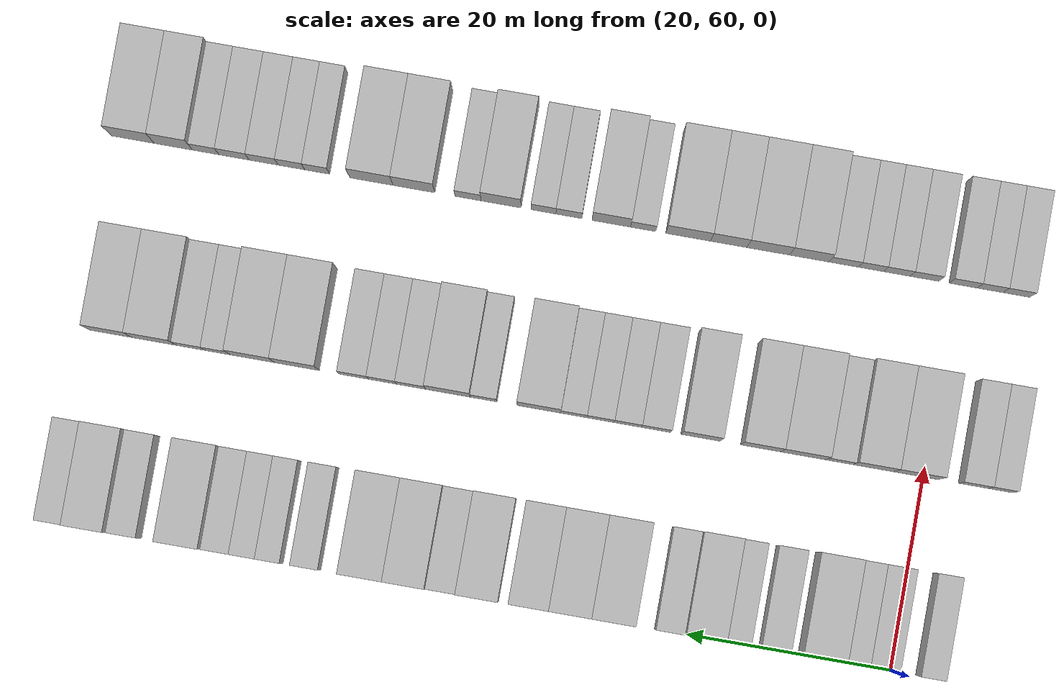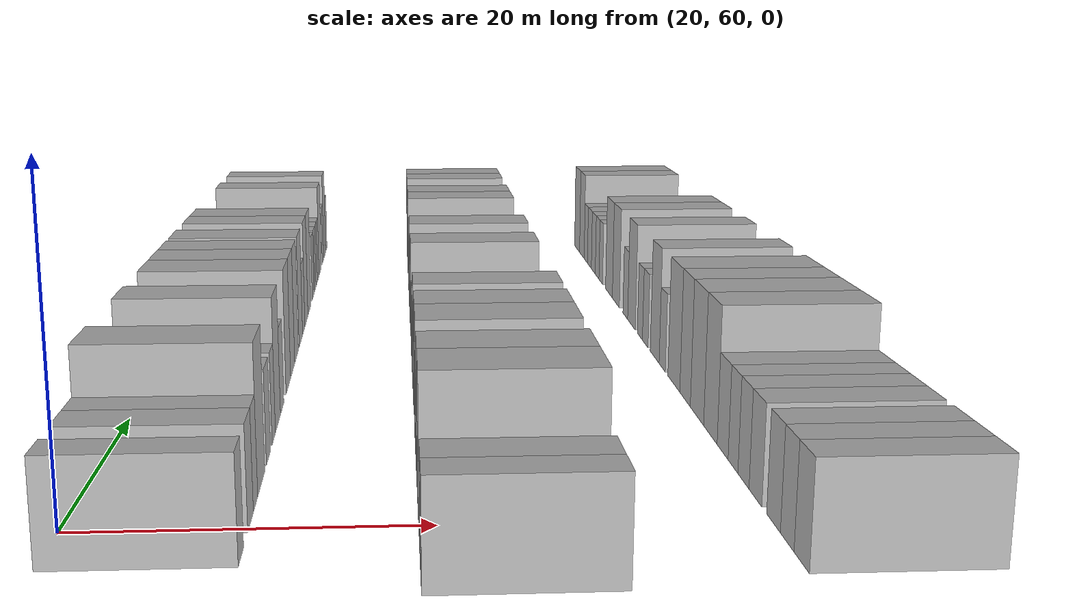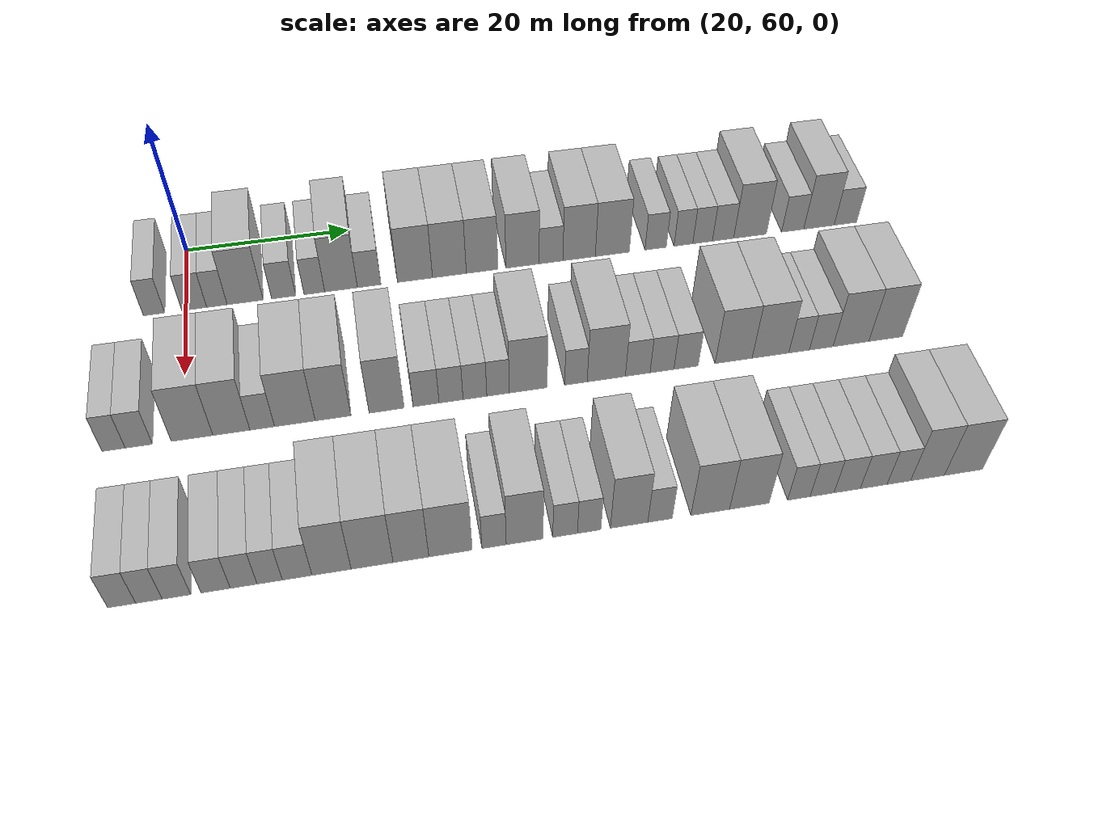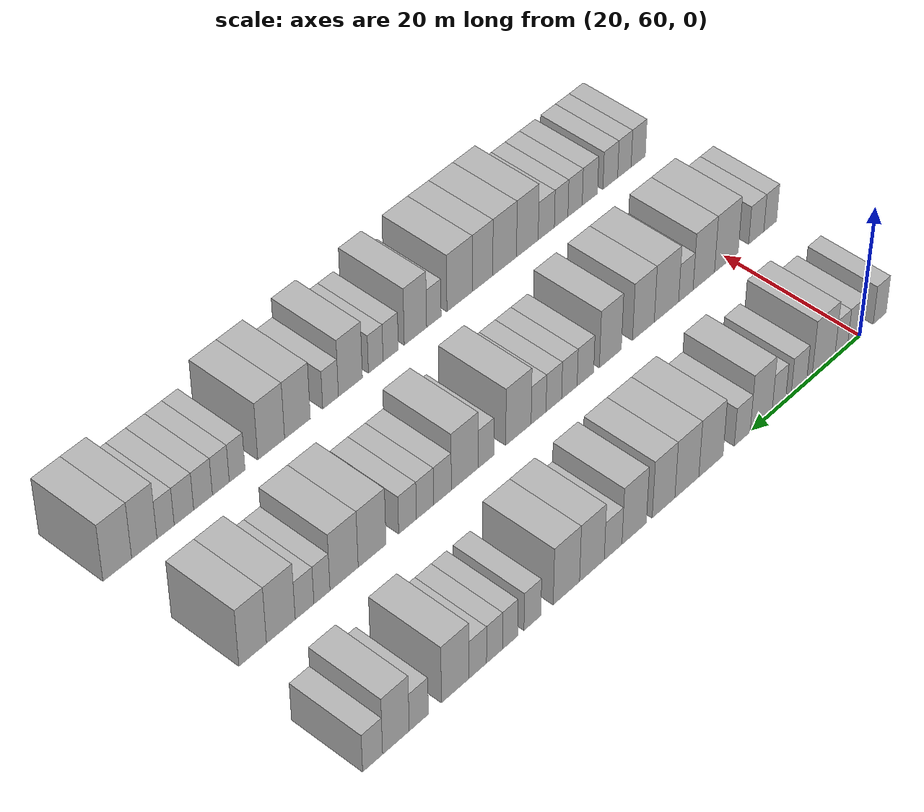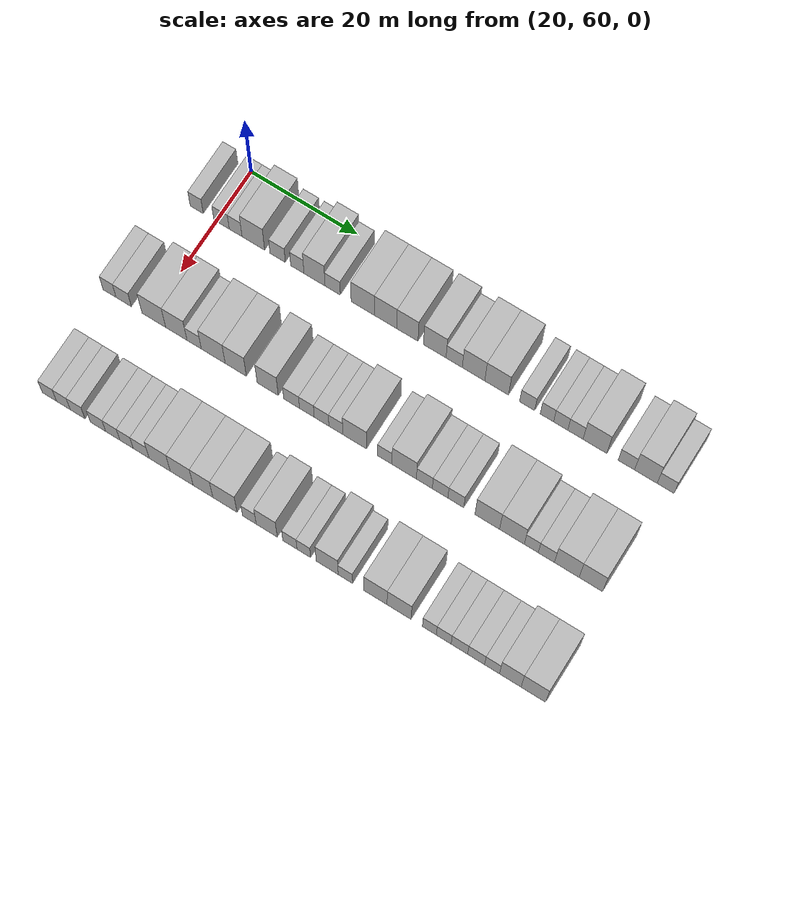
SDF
<sdf version="1.6">
 <world name="default">
  <model name="building_74">
   <static>1</static>
   <pose>25.0000 56.2883 0 0.000000 0.000000 0.000000</pose>
   <link name="link">
    <pose>0 0 3.00 0 0 0</pose>
    <collision name="collision"><geometry><box><size>10.0000 2.4658 6.0000</size></box></geometry></collision>
    <visual name="visual">
     <cast_shadows>0</cast_shadows>
     <geometry><box><size>10.0000 2.4658 6.0000</size></box></geometry>
     <material>
      <script>
       <uri>model://HANNAS_wall/materials/scripts</uri>
       <uri>model://HANNAS_wall/materials/textures</uri>
       <name>vrc/HANNAS_wall</name>
      </script>
     </material>
    </visual>
   </link>
  </model>
  <model name="building_75">
   <static>1</static>
   <pose>25.0000 60.9680 0 0.000000 0.000000 0.000000</pose>
   <link name="link">
    <pose>0 0 3.00 0 0 0</pose>
    <collision name="collision"><geometry><box><size>10.0000 2.8935 6.0000</size></box></geometry></collision>
    <visual name="visual">
     <cast_shadows>0</cast_shadows>
     <geometry><box><size>10.0000 2.8935 6.0000</size></box></geometry>
     <material>
      <script>
       <uri>model://HANNAS_wall/materials/scripts</uri>
       <uri>model://HANNAS_wall/materials/textures</uri>
       <name>vrc/HANNAS_wall</name>
      </script>
     </material>
    </visual>
   </link>
  </model>
  <model name="building_76">
   <static>1</static>
   <pose>25.0000 63.6170 0 0.000000 0.000000 0.000000</pose>
   <link name="link">
    <pose>0 0 3.00 0 0 0</pose>
    <collision name="collision"><geometry><box><size>10.0000 2.4045 6.0000</size></box></geometry></collision>
    <visual name="visual">
     <cast_shadows>0</cast_shadows>
     <geometry><box><size>10.0000 2.4045 6.0000</size></box></geometry>
     <material>
      <script>
       <uri>model://HANNAS_wall/materials/scripts</uri>
       <uri>model://HANNAS_wall/materials/textures</uri>
       <name>vrc/HANNAS_wall</name>
      </script>
     </material>
    </visual>
   </link>
  </model>
  <model name="building_77">
   <static>1</static>
   <pose>25.0000 66.9416 0 0.000000 0.000000 0.000000</pose>
   <link name="link">
    <pose>0 0 4.50 0 0 0</pose>
    <collision name="collision"><geometry><box><size>10.0000 4.2447 9.0000</size></box></geometry></collision>
    <visual name="visual">
     <cast_shadows>0</cast_shadows>
     <geometry><box><size>10.0000 4.2447 9.0000</size></box></geometry>
     <material>
      <script>
       <uri>model://HANNAS_wall/materials/scripts</uri>
       <uri>model://HANNAS_wall/materials/textures</uri>
       <name>vrc/HANNAS_wall</name>
      </script>
     </material>
    </visual>
   </link>
  </model>
  <model name="building_78">
   <static>1</static>
   <pose>25.0000 71.4945 0 0.000000 0.000000 0.000000</pose>
   <link name="link">
    <pose>0 0 3.00 0 0 0</pose>
    <collision name="collision"><geometry><box><size>10.0000 2.8611 6.0000</size></box></geometry></collision>
    <visual name="visual">
     <cast_shadows>0</cast_shadows>
     <geometry><box><size>10.0000 2.8611 6.0000</size></box></geometry>
     <material>
      <script>
       <uri>model://HANNAS_wall/materials/scripts</uri>
       <uri>model://HANNAS_wall/materials/textures</uri>
       <name>vrc/HANNAS_wall</name>
      </script>
     </material>
    </visual>
   </link>
  </model>
  <model name="building_79">
   <static>1</static>
   <pose>25.0000 75.1575 0 0.000000 0.000000 0.000000</pose>
   <link name="link">
    <pose>0 0 3.00 0 0 0</pose>
    <collision name="collision"><geometry><box><size>10.0000 2.4649 6.0000</size></box></geometry></collision>
    <visual name="visual">
     <cast_shadows>0</cast_shadows>
     <geometry><box><size>10.0000 2.4649 6.0000</size></box></geometry>
     <material>
      <script>
       <uri>model://HANNAS_wall/materials/scripts</uri>
       <uri>model://HANNAS_wall/materials/textures</uri>
       <name>vrc/HANNAS_wall</name>
      </script>
     </material>
    </visual>
   </link>
  </model>
  <model name="building_80">
   <static>1</static>
   <pose>25.0000 78.3529 0 0.000000 0.000000 0.000000</pose>
   <link name="link">
    <pose>0 0 4.50 0 0 0</pose>
    <collision name="collision"><geometry><box><size>10.0000 3.9260 9.0000</size></box></geometry></collision>
    <visual name="visual">
     <cast_shadows>0</cast_shadows>
     <geometry><box><size>10.0000 3.9260 9.0000</size></box></geometry>
     <material>
      <script>
       <uri>model://HANNAS_wall/materials/scripts</uri>
       <uri>model://HANNAS_wall/materials/textures</uri>
       <name>vrc/HANNAS_wall</name>
      </script>
     </material>
    </visual>
   </link>
  </model>
  <model name="building_81">
   <static>1</static>
   <pose>25.0000 81.7323 0 0.000000 0.000000 0.000000</pose>
   <link name="link">
    <pose>0 0 3.00 0 0 0</pose>
    <collision name="collision"><geometry><box><size>10.0000 2.8328 6.0000</size></box></geometry></collision>
    <visual name="visual">
     <cast_shadows>0</cast_shadows>
     <geometry><box><size>10.0000 2.8328 6.0000</size></box></geometry>
     <material>
      <script>
       <uri>model://HANNAS_wall/materials/scripts</uri>
       <uri>model://HANNAS_wall/materials/textures</uri>
       <name>vrc/HANNAS_wall</name>
      </script>
     </material>
    </visual>
   </link>
  </model>
  <model name="building_82">
   <static>1</static>
   <pose>25.0000 87.2808 0 0.000000 0.000000 0.000000</pose>
   <link name="link">
    <pose>0 0 4.50 0 0 0</pose>
    <collision name="collision"><geometry><box><size>10.0000 4.2640 9.0000</size></box></geometry></collision>
    <visual name="visual">
     <cast_shadows>0</cast_shadows>
     <geometry><box><size>10.0000 4.2640 9.0000</size></box></geometry>
     <material>
      <script>
       <uri>model://HANNAS_wall/materials/scripts</uri>
       <uri>model://HANNAS_wall/materials/textures</uri>
       <name>vrc/HANNAS_wall</name>
      </script>
     </material>
    </visual>
   </link>
  </model>
  <model name="building_83">
   <static>1</static>
   <pose>25.0000 91.4872 0 0.000000 0.000000 0.000000</pose>
   <link name="link">
    <pose>0 0 4.50 0 0 0</pose>
    <collision name="collision"><geometry><box><size>10.0000 4.1489 9.0000</size></box></geometry></collision>
    <visual name="visual">
     <cast_shadows>0</cast_shadows>
     <geometry><box><size>10.0000 4.1489 9.0000</size></box></geometry>
     <material>
      <script>
       <uri>model://HANNAS_wall/materials/scripts</uri>
       <uri>model://HANNAS_wall/materials/textures</uri>
       <name>vrc/HANNAS_wall</name>
      </script>
     </material>
    </visual>
   </link>
  </model>
  <model name="building_84">
   <static>1</static>
   <pose>25.0000 95.5067 0 0.000000 0.000000 0.000000</pose>
   <link name="link">
    <pose>0 0 4.50 0 0 0</pose>
    <collision name="collision"><geometry><box><size>10.0000 3.8901 9.0000</size></box></geometry></collision>
    <visual name="visual">
     <cast_shadows>0</cast_shadows>
     <geometry><box><size>10.0000 3.8901 9.0000</size></box></geometry>
     <material>
      <script>
       <uri>model://HANNAS_wall/materials/scripts</uri>
       <uri>model://HANNAS_wall/materials/textures</uri>
       <name>vrc/HANNAS_wall</name>
      </script>
     </material>
    </visual>
   </link>
  </model>
  <model name="building_85">
   <static>1</static>
   <pose>25.0000 100.5117 0 0.000000 0.000000 0.000000</pose>
   <link name="link">
    <pose>0 0 4.50 0 0 0</pose>
    <collision name="collision"><geometry><box><size>10.0000 4.1198 9.0000</size></box></geometry></collision>
    <visual name="visual">
     <cast_shadows>0</cast_shadows>
     <geometry><box><size>10.0000 4.1198 9.0000</size></box></geometry>
     <material>
      <script>
       <uri>model://HANNAS_wall/materials/scripts</uri>
       <uri>model://HANNAS_wall/materials/textures</uri>
       <name>vrc/HANNAS_wall</name>
      </script>
     </material>
    </visual>
   </link>
  </model>
  <model name="building_86">
   <static>1</static>
   <pose>25.0000 104.0516 0 0.000000 0.000000 0.000000</pose>
   <link name="link">
    <pose>0 0 3.00 0 0 0</pose>
    <collision name="collision"><geometry><box><size>10.0000 2.9601 6.0000</size></box></geometry></collision>
    <visual name="visual">
     <cast_shadows>0</cast_shadows>
     <geometry><box><size>10.0000 2.9601 6.0000</size></box></geometry>
     <material>
      <script>
       <uri>model://HANNAS_wall/materials/scripts</uri>
       <uri>model://HANNAS_wall/materials/textures</uri>
       <name>vrc/HANNAS_wall</name>
      </script>
     </material>
    </visual>
   </link>
  </model>
  <model name="building_87">
   <static>1</static>
   <pose>25.0000 107.5722 0 0.000000 0.000000 0.000000</pose>
   <link name="link">
    <pose>0 0 4.50 0 0 0</pose>
    <collision name="collision"><geometry><box><size>10.0000 4.0810 9.0000</size></box></geometry></collision>
    <visual name="visual">
     <cast_shadows>0</cast_shadows>
     <geometry><box><size>10.0000 4.0810 9.0000</size></box></geometry>
     <material>
      <script>
       <uri>model://HANNAS_wall/materials/scripts</uri>
       <uri>model://HANNAS_wall/materials/textures</uri>
       <name>vrc/HANNAS_wall</name>
      </script>
     </material>
    </visual>
   </link>
  </model>
  <model name="building_88">
   <static>1</static>
   <pose>25.0000 111.7643 0 0.000000 0.000000 0.000000</pose>
   <link name="link">
    <pose>0 0 4.50 0 0 0</pose>
    <collision name="collision"><geometry><box><size>10.0000 4.3033 9.0000</size></box></geometry></collision>
    <visual name="visual">
     <cast_shadows>0</cast_shadows>
     <geometry><box><size>10.0000 4.3033 9.0000</size></box></geometry>
     <material>
      <script>
       <uri>model://HANNAS_wall/materials/scripts</uri>
       <uri>model://HANNAS_wall/materials/textures</uri>
       <name>vrc/HANNAS_wall</name>
      </script>
     </material>
    </visual>
   </link>
  </model>
  <model name="building_89">
   <static>1</static>
   <pose>25.0000 117.2721 0 0.000000 0.000000 0.000000</pose>
   <link name="link">
    <pose>0 0 3.00 0 0 0</pose>
    <collision name="collision"><geometry><box><size>10.0000 2.7122 6.0000</size></box></geometry></collision>
    <visual name="visual">
     <cast_shadows>0</cast_shadows>
     <geometry><box><size>10.0000 2.7122 6.0000</size></box></geometry>
     <material>
      <script>
       <uri>model://HANNAS_wall/materials/scripts</uri>
       <uri>model://HANNAS_wall/materials/textures</uri>
       <name>vrc/HANNAS_wall</name>
      </script>
     </material>
    </visual>
   </link>
  </model>
  <model name="building_90">
   <static>1</static>
   <pose>25.0000 120.8321 0 0.000000 0.000000 0.000000</pose>
   <link name="link">
    <pose>0 0 3.00 0 0 0</pose>
    <collision name="collision"><geometry><box><size>10.0000 2.4078 6.0000</size></box></geometry></collision>
    <visual name="visual">
     <cast_shadows>0</cast_shadows>
     <geometry><box><size>10.0000 2.4078 6.0000</size></box></geometry>
     <material>
      <script>
       <uri>model://HANNAS_wall/materials/scripts</uri>
       <uri>model://HANNAS_wall/materials/textures</uri>
       <name>vrc/HANNAS_wall</name>
      </script>
     </material>
    </visual>
   </link>
  </model>
  <model name="building_91">
   <static>1</static>
   <pose>25.0000 123.2994 0 0.000000 0.000000 0.000000</pose>
   <link name="link">
    <pose>0 0 3.00 0 0 0</pose>
    <collision name="collision"><geometry><box><size>10.0000 2.5268 6.0000</size></box></geometry></collision>
    <visual name="visual">
     <cast_shadows>0</cast_shadows>
     <geometry><box><size>10.0000 2.5268 6.0000</size></box></geometry>
     <material>
      <script>
       <uri>model://HANNAS_wall/materials/scripts</uri>
       <uri>model://HANNAS_wall/materials/textures</uri>
       <name>vrc/HANNAS_wall</name>
      </script>
     </material>
    </visual>
   </link>
  </model>
  <model name="building_92">
   <static>1</static>
   <pose>25.0000 125.9345 0 0.000000 0.000000 0.000000</pose>
   <link name="link">
    <pose>0 0 3.00 0 0 0</pose>
    <collision name="collision"><geometry><box><size>10.0000 2.7433 6.0000</size></box></geometry></collision>
    <visual name="visual">
     <cast_shadows>0</cast_shadows>
     <geometry><box><size>10.0000 2.7433 6.0000</size></box></geometry>
     <material>
      <script>
       <uri>model://HANNAS_wall/materials/scripts</uri>
       <uri>model://HANNAS_wall/materials/textures</uri>
       <name>vrc/HANNAS_wall</name>
      </script>
     </material>
    </visual>
   </link>
  </model>
  <model name="building_93">
   <static>1</static>
   <pose>25.0000 129.4355 0 0.000000 0.000000 0.000000</pose>
   <link name="link">
    <pose>0 0 4.50 0 0 0</pose>
    <collision name="collision"><geometry><box><size>10.0000 4.2588 9.0000</size></box></geometry></collision>
    <visual name="visual">
     <cast_shadows>0</cast_shadows>
     <geometry><box><size>10.0000 4.2588 9.0000</size></box></geometry>
     <material>
      <script>
       <uri>model://HANNAS_wall/materials/scripts</uri>
       <uri>model://HANNAS_wall/materials/textures</uri>
       <name>vrc/HANNAS_wall</name>
      </script>
     </material>
    </visual>
   </link>
  </model>
  <model name="building_94">
   <static>1</static>
   <pose>25.0000 135.0174 0 0.000000 0.000000 0.000000</pose>
   <link name="link">
    <pose>0 0 3.00 0 0 0</pose>
    <collision name="collision"><geometry><box><size>10.0000 2.9049 6.0000</size></box></geometry></collision>
    <visual name="visual">
     <cast_shadows>0</cast_shadows>
     <geometry><box><size>10.0000 2.9049 6.0000</size></box></geometry>
     <material>
      <script>
       <uri>model://HANNAS_wall/materials/scripts</uri>
       <uri>model://HANNAS_wall/materials/textures</uri>
       <name>vrc/HANNAS_wall</name>
      </script>
     </material>
    </visual>
   </link>
  </model>
  <model name="building_95">
   <static>1</static>
   <pose>25.0000 138.4718 0 0.000000 0.000000 0.000000</pose>
   <link name="link">
    <pose>0 0 4.50 0 0 0</pose>
    <collision name="collision"><geometry><box><size>10.0000 4.0040 9.0000</size></box></geometry></collision>
    <visual name="visual">
     <cast_shadows>0</cast_shadows>
     <geometry><box><size>10.0000 4.0040 9.0000</size></box></geometry>
     <material>
      <script>
       <uri>model://HANNAS_wall/materials/scripts</uri>
       <uri>model://HANNAS_wall/materials/textures</uri>
       <name>vrc/HANNAS_wall</name>
      </script>
     </material>
    </visual>
   </link>
  </model>
  <model name="building_96">
   <static>1</static>
   <pose>25.0000 141.9629 0 0.000000 0.000000 0.000000</pose>
   <link name="link">
    <pose>0 0 3.00 0 0 0</pose>
    <collision name="collision"><geometry><box><size>10.0000 2.9783 6.0000</size></box></geometry></collision>
    <visual name="visual">
     <cast_shadows>0</cast_shadows>
     <geometry><box><size>10.0000 2.9783 6.0000</size></box></geometry>
     <material>
      <script>
       <uri>model://HANNAS_wall/materials/scripts</uri>
       <uri>model://HANNAS_wall/materials/textures</uri>
       <name>vrc/HANNAS_wall</name>
      </script>
     </material>
    </visual>
   </link>
  </model>
  <model name="building_193">
   <static>1</static>
   <pose>44.0000 52.4779 0 0.000000 0.000000 0.000000</pose>
   <link name="link">
    <pose>0 0 3.00 0 0 0</pose>
    <collision name="collision"><geometry><box><size>10.0000 2.4436 6.0000</size></box></geometry></collision>
    <visual name="visual">
     <cast_shadows>0</cast_shadows>
     <geometry><box><size>10.0000 2.4436 6.0000</size></box></geometry>
     <material>
      <script>
       <uri>model://HANNAS_wall/materials/scripts</uri>
       <uri>model://HANNAS_wall/materials/textures</uri>
       <name>vrc/HANNAS_wall</name>
      </script>
     </material>
    </visual>
   </link>
  </model>
  <model name="building_194">
   <static>1</static>
   <pose>44.0000 55.1393 0 0.000000 0.000000 0.000000</pose>
   <link name="link">
    <pose>0 0 3.00 0 0 0</pose>
    <collision name="collision"><geometry><box><size>10.0000 2.8792 6.0000</size></box></geometry></collision>
    <visual name="visual">
     <cast_shadows>0</cast_shadows>
     <geometry><box><size>10.0000 2.8792 6.0000</size></box></geometry>
     <material>
      <script>
       <uri>model://HANNAS_wall/materials/scripts</uri>
       <uri>model://HANNAS_wall/materials/textures</uri>
       <name>vrc/HANNAS_wall</name>
      </script>
     </material>
    </visual>
   </link>
  </model>
  <model name="building_195">
   <static>1</static>
   <pose>44.0000 60.7960 0 0.000000 0.000000 0.000000</pose>
   <link name="link">
    <pose>0 0 4.50 0 0 0</pose>
    <collision name="collision"><geometry><box><size>10.0000 4.4342 9.0000</size></box></geometry></collision>
    <visual name="visual">
     <cast_shadows>0</cast_shadows>
     <geometry><box><size>10.0000 4.4342 9.0000</size></box></geometry>
     <material>
      <script>
       <uri>model://HANNAS_wall/materials/scripts</uri>
       <uri>model://HANNAS_wall/materials/textures</uri>
       <name>vrc/HANNAS_wall</name>
      </script>
     </material>
    </visual>
   </link>
  </model>
  <model name="building_196">
   <static>1</static>
   <pose>44.0000 65.0018 0 0.000000 0.000000 0.000000</pose>
   <link name="link">
    <pose>0 0 4.50 0 0 0</pose>
    <collision name="collision"><geometry><box><size>10.0000 3.9774 9.0000</size></box></geometry></collision>
    <visual name="visual">
     <cast_shadows>0</cast_shadows>
     <geometry><box><size>10.0000 3.9774 9.0000</size></box></geometry>
     <material>
      <script>
       <uri>model://HANNAS_wall/materials/scripts</uri>
       <uri>model://HANNAS_wall/materials/textures</uri>
       <name>vrc/HANNAS_wall</name>
      </script>
     </material>
    </visual>
   </link>
  </model>
  <model name="building_197">
   <static>1</static>
   <pose>44.0000 68.3236 0 0.000000 0.000000 0.000000</pose>
   <link name="link">
    <pose>0 0 3.00 0 0 0</pose>
    <collision name="collision"><geometry><box><size>10.0000 2.6660 6.0000</size></box></geometry></collision>
    <visual name="visual">
     <cast_shadows>0</cast_shadows>
     <geometry><box><size>10.0000 2.6660 6.0000</size></box></geometry>
     <material>
      <script>
       <uri>model://HANNAS_wall/materials/scripts</uri>
       <uri>model://HANNAS_wall/materials/textures</uri>
       <name>vrc/HANNAS_wall</name>
      </script>
     </material>
    </visual>
   </link>
  </model>
  <model name="building_198">
   <static>1</static>
   <pose>44.0000 71.8673 0 0.000000 0.000000 0.000000</pose>
   <link name="link">
    <pose>0 0 4.50 0 0 0</pose>
    <collision name="collision"><geometry><box><size>10.0000 4.4215 9.0000</size></box></geometry></collision>
    <visual name="visual">
     <cast_shadows>0</cast_shadows>
     <geometry><box><size>10.0000 4.4215 9.0000</size></box></geometry>
     <material>
      <script>
       <uri>model://HANNAS_wall/materials/scripts</uri>
       <uri>model://HANNAS_wall/materials/textures</uri>
       <name>vrc/HANNAS_wall</name>
      </script>
     </material>
    </visual>
   </link>
  </model>
  <model name="building_199">
   <static>1</static>
   <pose>44.0000 76.0346 0 0.000000 0.000000 0.000000</pose>
   <link name="link">
    <pose>0 0 4.50 0 0 0</pose>
    <collision name="collision"><geometry><box><size>10.0000 3.9131 9.0000</size></box></geometry></collision>
    <visual name="visual">
     <cast_shadows>0</cast_shadows>
     <geometry><box><size>10.0000 3.9131 9.0000</size></box></geometry>
     <material>
      <script>
       <uri>model://HANNAS_wall/materials/scripts</uri>
       <uri>model://HANNAS_wall/materials/textures</uri>
       <name>vrc/HANNAS_wall</name>
      </script>
     </material>
    </visual>
   </link>
  </model>
  <model name="building_200">
   <static>1</static>
   <pose>44.0000 81.9306 0 0.000000 0.000000 0.000000</pose>
   <link name="link">
    <pose>0 0 4.50 0 0 0</pose>
    <collision name="collision"><geometry><box><size>10.0000 3.8789 9.0000</size></box></geometry></collision>
    <visual name="visual">
     <cast_shadows>0</cast_shadows>
     <geometry><box><size>10.0000 3.8789 9.0000</size></box></geometry>
     <material>
      <script>
       <uri>model://HANNAS_wall/materials/scripts</uri>
       <uri>model://HANNAS_wall/materials/textures</uri>
       <name>vrc/HANNAS_wall</name>
      </script>
     </material>
    </visual>
   </link>
  </model>
  <model name="building_201">
   <static>1</static>
   <pose>44.0000 86.3154 0 0.000000 0.000000 0.000000</pose>
   <link name="link">
    <pose>0 0 3.00 0 0 0</pose>
    <collision name="collision"><geometry><box><size>10.0000 2.8909 6.0000</size></box></geometry></collision>
    <visual name="visual">
     <cast_shadows>0</cast_shadows>
     <geometry><box><size>10.0000 2.8909 6.0000</size></box></geometry>
     <material>
      <script>
       <uri>model://HANNAS_wall/materials/scripts</uri>
       <uri>model://HANNAS_wall/materials/textures</uri>
       <name>vrc/HANNAS_wall</name>
      </script>
     </material>
    </visual>
   </link>
  </model>
  <model name="building_202">
   <static>1</static>
   <pose>44.0000 89.1066 0 0.000000 0.000000 0.000000</pose>
   <link name="link">
    <pose>0 0 3.00 0 0 0</pose>
    <collision name="collision"><geometry><box><size>10.0000 2.6915 6.0000</size></box></geometry></collision>
    <visual name="visual">
     <cast_shadows>0</cast_shadows>
     <geometry><box><size>10.0000 2.6915 6.0000</size></box></geometry>
     <material>
      <script>
       <uri>model://HANNAS_wall/materials/scripts</uri>
       <uri>model://HANNAS_wall/materials/textures</uri>
       <name>vrc/HANNAS_wall</name>
      </script>
     </material>
    </visual>
   </link>
  </model>
  <model name="building_203">
   <static>1</static>
   <pose>44.0000 91.7895 0 0.000000 0.000000 0.000000</pose>
   <link name="link">
    <pose>0 0 3.00 0 0 0</pose>
    <collision name="collision"><geometry><box><size>10.0000 2.6743 6.0000</size></box></geometry></collision>
    <visual name="visual">
     <cast_shadows>0</cast_shadows>
     <geometry><box><size>10.0000 2.6743 6.0000</size></box></geometry>
     <material>
      <script>
       <uri>model://HANNAS_wall/materials/scripts</uri>
       <uri>model://HANNAS_wall/materials/textures</uri>
       <name>vrc/HANNAS_wall</name>
      </script>
     </material>
    </visual>
   </link>
  </model>
  <model name="building_204">
   <static>1</static>
   <pose>44.0000 94.4007 0 0.000000 0.000000 0.000000</pose>
   <link name="link">
    <pose>0 0 3.00 0 0 0</pose>
    <collision name="collision"><geometry><box><size>10.0000 2.5481 6.0000</size></box></geometry></collision>
    <visual name="visual">
     <cast_shadows>0</cast_shadows>
     <geometry><box><size>10.0000 2.5481 6.0000</size></box></geometry>
     <material>
      <script>
       <uri>model://HANNAS_wall/materials/scripts</uri>
       <uri>model://HANNAS_wall/materials/textures</uri>
       <name>vrc/HANNAS_wall</name>
      </script>
     </material>
    </visual>
   </link>
  </model>
  <model name="building_205">
   <static>1</static>
   <pose>44.0000 97.8202 0 0.000000 0.000000 0.000000</pose>
   <link name="link">
    <pose>0 0 4.50 0 0 0</pose>
    <collision name="collision"><geometry><box><size>10.0000 4.2910 9.0000</size></box></geometry></collision>
    <visual name="visual">
     <cast_shadows>0</cast_shadows>
     <geometry><box><size>10.0000 4.2910 9.0000</size></box></geometry>
     <material>
      <script>
       <uri>model://HANNAS_wall/materials/scripts</uri>
       <uri>model://HANNAS_wall/materials/textures</uri>
       <name>vrc/HANNAS_wall</name>
      </script>
     </material>
    </visual>
   </link>
  </model>
  <model name="building_206">
   <static>1</static>
   <pose>44.0000 103.2619 0 0.000000 0.000000 0.000000</pose>
   <link name="link">
    <pose>0 0 3.00 0 0 0</pose>
    <collision name="collision"><geometry><box><size>10.0000 2.5923 6.0000</size></box></geometry></collision>
    <visual name="visual">
     <cast_shadows>0</cast_shadows>
     <geometry><box><size>10.0000 2.5923 6.0000</size></box></geometry>
     <material>
      <script>
       <uri>model://HANNAS_wall/materials/scripts</uri>
       <uri>model://HANNAS_wall/materials/textures</uri>
       <name>vrc/HANNAS_wall</name>
      </script>
     </material>
    </visual>
   </link>
  </model>
  <model name="building_207">
   <static>1</static>
   <pose>44.0000 106.7647 0 0.000000 0.000000 0.000000</pose>
   <link name="link">
    <pose>0 0 4.50 0 0 0</pose>
    <collision name="collision"><geometry><box><size>10.0000 4.4134 9.0000</size></box></geometry></collision>
    <visual name="visual">
     <cast_shadows>0</cast_shadows>
     <geometry><box><size>10.0000 4.4134 9.0000</size></box></geometry>
     <material>
      <script>
       <uri>model://HANNAS_wall/materials/scripts</uri>
       <uri>model://HANNAS_wall/materials/textures</uri>
       <name>vrc/HANNAS_wall</name>
      </script>
     </material>
    </visual>
   </link>
  </model>
  <model name="building_208">
   <static>1</static>
   <pose>44.0000 110.4090 0 0.000000 0.000000 0.000000</pose>
   <link name="link">
    <pose>0 0 3.00 0 0 0</pose>
    <collision name="collision"><geometry><box><size>10.0000 2.8753 6.0000</size></box></geometry></collision>
    <visual name="visual">
     <cast_shadows>0</cast_shadows>
     <geometry><box><size>10.0000 2.8753 6.0000</size></box></geometry>
     <material>
      <script>
       <uri>model://HANNAS_wall/materials/scripts</uri>
       <uri>model://HANNAS_wall/materials/textures</uri>
       <name>vrc/HANNAS_wall</name>
      </script>
     </material>
    </visual>
   </link>
  </model>
  <model name="building_209">
   <static>1</static>
   <pose>44.0000 113.2383 0 0.000000 0.000000 0.000000</pose>
   <link name="link">
    <pose>0 0 3.00 0 0 0</pose>
    <collision name="collision"><geometry><box><size>10.0000 2.7834 6.0000</size></box></geometry></collision>
    <visual name="visual">
     <cast_shadows>0</cast_shadows>
     <geometry><box><size>10.0000 2.7834 6.0000</size></box></geometry>
     <material>
      <script>
       <uri>model://HANNAS_wall/materials/scripts</uri>
       <uri>model://HANNAS_wall/materials/textures</uri>
       <name>vrc/HANNAS_wall</name>
      </script>
     </material>
    </visual>
   </link>
  </model>
  <model name="building_210">
   <static>1</static>
   <pose>44.0000 116.0542 0 0.000000 0.000000 0.000000</pose>
   <link name="link">
    <pose>0 0 3.00 0 0 0</pose>
    <collision name="collision"><geometry><box><size>10.0000 2.8483 6.0000</size></box></geometry></collision>
    <visual name="visual">
     <cast_shadows>0</cast_shadows>
     <geometry><box><size>10.0000 2.8483 6.0000</size></box></geometry>
     <material>
      <script>
       <uri>model://HANNAS_wall/materials/scripts</uri>
       <uri>model://HANNAS_wall/materials/textures</uri>
       <name>vrc/HANNAS_wall</name>
      </script>
     </material>
    </visual>
   </link>
  </model>
  <model name="building_211">
   <static>1</static>
   <pose>44.0000 121.6742 0 0.000000 0.000000 0.000000</pose>
   <link name="link">
    <pose>0 0 4.50 0 0 0</pose>
    <collision name="collision"><geometry><box><size>10.0000 4.3918 9.0000</size></box></geometry></collision>
    <visual name="visual">
     <cast_shadows>0</cast_shadows>
     <geometry><box><size>10.0000 4.3918 9.0000</size></box></geometry>
     <material>
      <script>
       <uri>model://HANNAS_wall/materials/scripts</uri>
       <uri>model://HANNAS_wall/materials/textures</uri>
       <name>vrc/HANNAS_wall</name>
      </script>
     </material>
    </visual>
   </link>
  </model>
  <model name="building_212">
   <static>1</static>
   <pose>44.0000 126.0606 0 0.000000 0.000000 0.000000</pose>
   <link name="link">
    <pose>0 0 4.50 0 0 0</pose>
    <collision name="collision"><geometry><box><size>10.0000 4.3810 9.0000</size></box></geometry></collision>
    <visual name="visual">
     <cast_shadows>0</cast_shadows>
     <geometry><box><size>10.0000 4.3810 9.0000</size></box></geometry>
     <material>
      <script>
       <uri>model://HANNAS_wall/materials/scripts</uri>
       <uri>model://HANNAS_wall/materials/textures</uri>
       <name>vrc/HANNAS_wall</name>
      </script>
     </material>
    </visual>
   </link>
  </model>
  <model name="building_213">
   <static>1</static>
   <pose>44.0000 129.4884 0 0.000000 0.000000 0.000000</pose>
   <link name="link">
    <pose>0 0 3.00 0 0 0</pose>
    <collision name="collision"><geometry><box><size>10.0000 2.4746 6.0000</size></box></geometry></collision>
    <visual name="visual">
     <cast_shadows>0</cast_shadows>
     <geometry><box><size>10.0000 2.4746 6.0000</size></box></geometry>
     <material>
      <script>
       <uri>model://HANNAS_wall/materials/scripts</uri>
       <uri>model://HANNAS_wall/materials/textures</uri>
       <name>vrc/HANNAS_wall</name>
      </script>
     </material>
    </visual>
   </link>
  </model>
  <model name="building_214">
   <static>1</static>
   <pose>44.0000 132.1512 0 0.000000 0.000000 0.000000</pose>
   <link name="link">
    <pose>0 0 3.00 0 0 0</pose>
    <collision name="collision"><geometry><box><size>10.0000 2.8509 6.0000</size></box></geometry></collision>
    <visual name="visual">
     <cast_shadows>0</cast_shadows>
     <geometry><box><size>10.0000 2.8509 6.0000</size></box></geometry>
     <material>
      <script>
       <uri>model://HANNAS_wall/materials/scripts</uri>
       <uri>model://HANNAS_wall/materials/textures</uri>
       <name>vrc/HANNAS_wall</name>
      </script>
     </material>
    </visual>
   </link>
  </model>
  <model name="building_215">
   <static>1</static>
   <pose>44.0000 135.7488 0 0.000000 0.000000 0.000000</pose>
   <link name="link">
    <pose>0 0 4.50 0 0 0</pose>
    <collision name="collision"><geometry><box><size>10.0000 4.3442 9.0000</size></box></geometry></collision>
    <visual name="visual">
     <cast_shadows>0</cast_shadows>
     <geometry><box><size>10.0000 4.3442 9.0000</size></box></geometry>
     <material>
      <script>
       <uri>model://HANNAS_wall/materials/scripts</uri>
       <uri>model://HANNAS_wall/materials/textures</uri>
       <name>vrc/HANNAS_wall</name>
      </script>
     </material>
    </visual>
   </link>
  </model>
  <model name="building_216">
   <static>1</static>
   <pose>44.0000 139.9794 0 0.000000 0.000000 0.000000</pose>
   <link name="link">
    <pose>0 0 4.50 0 0 0</pose>
    <collision name="collision"><geometry><box><size>10.0000 4.1170 9.0000</size></box></geometry></collision>
    <visual name="visual">
     <cast_shadows>0</cast_shadows>
     <geometry><box><size>10.0000 4.1170 9.0000</size></box></geometry>
     <material>
      <script>
       <uri>model://HANNAS_wall/materials/scripts</uri>
       <uri>model://HANNAS_wall/materials/textures</uri>
       <name>vrc/HANNAS_wall</name>
      </script>
     </material>
    </visual>
   </link>
  </model>
  <model name="building_313">
   <static>1</static>
   <pose>63.0000 54.1122 0 0.000000 0.000000 0.000000</pose>
   <link name="link">
    <pose>0 0 3.00 0 0 0</pose>
    <collision name="collision"><geometry><box><size>10.0000 2.6719 6.0000</size></box></geometry></collision>
    <visual name="visual">
     <cast_shadows>0</cast_shadows>
     <geometry><box><size>10.0000 2.6719 6.0000</size></box></geometry>
     <material>
      <script>
       <uri>model://HANNAS_wall/materials/scripts</uri>
       <uri>model://HANNAS_wall/materials/textures</uri>
       <name>vrc/HANNAS_wall</name>
      </script>
     </material>
    </visual>
   </link>
  </model>
  <model name="building_314">
   <static>1</static>
   <pose>63.0000 56.7197 0 0.000000 0.000000 0.000000</pose>
   <link name="link">
    <pose>0 0 3.00 0 0 0</pose>
    <collision name="collision"><geometry><box><size>10.0000 2.5432 6.0000</size></box></geometry></collision>
    <visual name="visual">
     <cast_shadows>0</cast_shadows>
     <geometry><box><size>10.0000 2.5432 6.0000</size></box></geometry>
     <material>
      <script>
       <uri>model://HANNAS_wall/materials/scripts</uri>
       <uri>model://HANNAS_wall/materials/textures</uri>
       <name>vrc/HANNAS_wall</name>
      </script>
     </material>
    </visual>
   </link>
  </model>
  <model name="building_315">
   <static>1</static>
   <pose>63.0000 59.3636 0 0.000000 0.000000 0.000000</pose>
   <link name="link">
    <pose>0 0 3.00 0 0 0</pose>
    <collision name="collision"><geometry><box><size>10.0000 2.7447 6.0000</size></box></geometry></collision>
    <visual name="visual">
     <cast_shadows>0</cast_shadows>
     <geometry><box><size>10.0000 2.7447 6.0000</size></box></geometry>
     <material>
      <script>
       <uri>model://HANNAS_wall/materials/scripts</uri>
       <uri>model://HANNAS_wall/materials/textures</uri>
       <name>vrc/HANNAS_wall</name>
      </script>
     </material>
    </visual>
   </link>
  </model>
  <model name="building_316">
   <static>1</static>
   <pose>63.0000 63.1548 0 0.000000 0.000000 0.000000</pose>
   <link name="link">
    <pose>0 0 3.00 0 0 0</pose>
    <collision name="collision"><geometry><box><size>10.0000 2.8376 6.0000</size></box></geometry></collision>
    <visual name="visual">
     <cast_shadows>0</cast_shadows>
     <geometry><box><size>10.0000 2.8376 6.0000</size></box></geometry>
     <material>
      <script>
       <uri>model://HANNAS_wall/materials/scripts</uri>
       <uri>model://HANNAS_wall/materials/textures</uri>
       <name>vrc/HANNAS_wall</name>
      </script>
     </material>
    </visual>
   </link>
  </model>
  <model name="building_317">
   <static>1</static>
   <pose>63.0000 65.8836 0 0.000000 0.000000 0.000000</pose>
   <link name="link">
    <pose>0 0 3.00 0 0 0</pose>
    <collision name="collision"><geometry><box><size>10.0000 2.6201 6.0000</size></box></geometry></collision>
    <visual name="visual">
     <cast_shadows>0</cast_shadows>
     <geometry><box><size>10.0000 2.6201 6.0000</size></box></geometry>
     <material>
      <script>
       <uri>model://HANNAS_wall/materials/scripts</uri>
       <uri>model://HANNAS_wall/materials/textures</uri>
       <name>vrc/HANNAS_wall</name>
      </script>
     </material>
    </visual>
   </link>
  </model>
  <model name="building_318">
   <static>1</static>
   <pose>63.0000 68.4302 0 0.000000 0.000000 0.000000</pose>
   <link name="link">
    <pose>0 0 3.00 0 0 0</pose>
    <collision name="collision"><geometry><box><size>10.0000 2.4730 6.0000</size></box></geometry></collision>
    <visual name="visual">
     <cast_shadows>0</cast_shadows>
     <geometry><box><size>10.0000 2.4730 6.0000</size></box></geometry>
     <material>
      <script>
       <uri>model://HANNAS_wall/materials/scripts</uri>
       <uri>model://HANNAS_wall/materials/textures</uri>
       <name>vrc/HANNAS_wall</name>
      </script>
     </material>
    </visual>
   </link>
  </model>
  <model name="building_319">
   <static>1</static>
   <pose>63.0000 71.1296 0 0.000000 0.000000 0.000000</pose>
   <link name="link">
    <pose>0 0 3.00 0 0 0</pose>
    <collision name="collision"><geometry><box><size>10.0000 2.9259 6.0000</size></box></geometry></collision>
    <visual name="visual">
     <cast_shadows>0</cast_shadows>
     <geometry><box><size>10.0000 2.9259 6.0000</size></box></geometry>
     <material>
      <script>
       <uri>model://HANNAS_wall/materials/scripts</uri>
       <uri>model://HANNAS_wall/materials/textures</uri>
       <name>vrc/HANNAS_wall</name>
      </script>
     </material>
    </visual>
   </link>
  </model>
  <model name="building_320">
   <static>1</static>
   <pose>63.0000 74.5350 0 0.000000 0.000000 0.000000</pose>
   <link name="link">
    <pose>0 0 4.50 0 0 0</pose>
    <collision name="collision"><geometry><box><size>10.0000 3.8848 9.0000</size></box></geometry></collision>
    <visual name="visual">
     <cast_shadows>0</cast_shadows>
     <geometry><box><size>10.0000 3.8848 9.0000</size></box></geometry>
     <material>
      <script>
       <uri>model://HANNAS_wall/materials/scripts</uri>
       <uri>model://HANNAS_wall/materials/textures</uri>
       <name>vrc/HANNAS_wall</name>
      </script>
     </material>
    </visual>
   </link>
  </model>
  <model name="building_321">
   <static>1</static>
   <pose>63.0000 78.5751 0 0.000000 0.000000 0.000000</pose>
   <link name="link">
    <pose>0 0 4.50 0 0 0</pose>
    <collision name="collision"><geometry><box><size>10.0000 4.1954 9.0000</size></box></geometry></collision>
    <visual name="visual">
     <cast_shadows>0</cast_shadows>
     <geometry><box><size>10.0000 4.1954 9.0000</size></box></geometry>
     <material>
      <script>
       <uri>model://HANNAS_wall/materials/scripts</uri>
       <uri>model://HANNAS_wall/materials/textures</uri>
       <name>vrc/HANNAS_wall</name>
      </script>
     </material>
    </visual>
   </link>
  </model>
  <model name="building_322">
   <static>1</static>
   <pose>63.0000 82.4731 0 0.000000 0.000000 0.000000</pose>
   <link name="link">
    <pose>0 0 4.50 0 0 0</pose>
    <collision name="collision"><geometry><box><size>10.0000 3.6006 9.0000</size></box></geometry></collision>
    <visual name="visual">
     <cast_shadows>0</cast_shadows>
     <geometry><box><size>10.0000 3.6006 9.0000</size></box></geometry>
     <material>
      <script>
       <uri>model://HANNAS_wall/materials/scripts</uri>
       <uri>model://HANNAS_wall/materials/textures</uri>
       <name>vrc/HANNAS_wall</name>
      </script>
     </material>
    </visual>
   </link>
  </model>
  <model name="building_323">
   <static>1</static>
   <pose>63.0000 86.4742 0 0.000000 0.000000 0.000000</pose>
   <link name="link">
    <pose>0 0 4.50 0 0 0</pose>
    <collision name="collision"><geometry><box><size>10.0000 4.4016 9.0000</size></box></geometry></collision>
    <visual name="visual">
     <cast_shadows>0</cast_shadows>
     <geometry><box><size>10.0000 4.4016 9.0000</size></box></geometry>
     <material>
      <script>
       <uri>model://HANNAS_wall/materials/scripts</uri>
       <uri>model://HANNAS_wall/materials/textures</uri>
       <name>vrc/HANNAS_wall</name>
      </script>
     </material>
    </visual>
   </link>
  </model>
  <model name="building_324">
   <static>1</static>
   <pose>63.0000 90.9151 0 0.000000 0.000000 0.000000</pose>
   <link name="link">
    <pose>0 0 3.00 0 0 0</pose>
    <collision name="collision"><geometry><box><size>10.0000 2.4802 6.0000</size></box></geometry></collision>
    <visual name="visual">
     <cast_shadows>0</cast_shadows>
     <geometry><box><size>10.0000 2.4802 6.0000</size></box></geometry>
     <material>
      <script>
       <uri>model://HANNAS_wall/materials/scripts</uri>
       <uri>model://HANNAS_wall/materials/textures</uri>
       <name>vrc/HANNAS_wall</name>
      </script>
     </material>
    </visual>
   </link>
  </model>
  <model name="building_325">
   <static>1</static>
   <pose>63.0000 94.0518 0 0.000000 0.000000 0.000000</pose>
   <link name="link">
    <pose>0 0 4.50 0 0 0</pose>
    <collision name="collision"><geometry><box><size>10.0000 3.7932 9.0000</size></box></geometry></collision>
    <visual name="visual">
     <cast_shadows>0</cast_shadows>
     <geometry><box><size>10.0000 3.7932 9.0000</size></box></geometry>
     <material>
      <script>
       <uri>model://HANNAS_wall/materials/scripts</uri>
       <uri>model://HANNAS_wall/materials/textures</uri>
       <name>vrc/HANNAS_wall</name>
      </script>
     </material>
    </visual>
   </link>
  </model>
  <model name="building_326">
   <static>1</static>
   <pose>63.0000 98.2285 0 0.000000 0.000000 0.000000</pose>
   <link name="link">
    <pose>0 0 3.00 0 0 0</pose>
    <collision name="collision"><geometry><box><size>10.0000 2.5602 6.0000</size></box></geometry></collision>
    <visual name="visual">
     <cast_shadows>0</cast_shadows>
     <geometry><box><size>10.0000 2.5602 6.0000</size></box></geometry>
     <material>
      <script>
       <uri>model://HANNAS_wall/materials/scripts</uri>
       <uri>model://HANNAS_wall/materials/textures</uri>
       <name>vrc/HANNAS_wall</name>
      </script>
     </material>
    </visual>
   </link>
  </model>
  <model name="building_327">
   <static>1</static>
   <pose>63.0000 100.7288 0 0.000000 0.000000 0.000000</pose>
   <link name="link">
    <pose>0 0 3.00 0 0 0</pose>
    <collision name="collision"><geometry><box><size>10.0000 2.4404 6.0000</size></box></geometry></collision>
    <visual name="visual">
     <cast_shadows>0</cast_shadows>
     <geometry><box><size>10.0000 2.4404 6.0000</size></box></geometry>
     <material>
      <script>
       <uri>model://HANNAS_wall/materials/scripts</uri>
       <uri>model://HANNAS_wall/materials/textures</uri>
       <name>vrc/HANNAS_wall</name>
      </script>
     </material>
    </visual>
   </link>
  </model>
  <model name="building_328">
   <static>1</static>
   <pose>63.0000 104.9218 0 0.000000 0.000000 0.000000</pose>
   <link name="link">
    <pose>0 0 4.50 0 0 0</pose>
    <collision name="collision"><geometry><box><size>10.0000 3.9456 9.0000</size></box></geometry></collision>
    <visual name="visual">
     <cast_shadows>0</cast_shadows>
     <geometry><box><size>10.0000 3.9456 9.0000</size></box></geometry>
     <material>
      <script>
       <uri>model://HANNAS_wall/materials/scripts</uri>
       <uri>model://HANNAS_wall/materials/textures</uri>
       <name>vrc/HANNAS_wall</name>
      </script>
     </material>
    </visual>
   </link>
  </model>
  <model name="building_329">
   <static>1</static>
   <pose>63.0000 108.1786 0 0.000000 0.000000 0.000000</pose>
   <link name="link">
    <pose>0 0 3.00 0 0 0</pose>
    <collision name="collision"><geometry><box><size>10.0000 2.5680 6.0000</size></box></geometry></collision>
    <visual name="visual">
     <cast_shadows>0</cast_shadows>
     <geometry><box><size>10.0000 2.5680 6.0000</size></box></geometry>
     <material>
      <script>
       <uri>model://HANNAS_wall/materials/scripts</uri>
       <uri>model://HANNAS_wall/materials/textures</uri>
       <name>vrc/HANNAS_wall</name>
      </script>
     </material>
    </visual>
   </link>
  </model>
  <model name="building_330">
   <static>1</static>
   <pose>63.0000 113.5281 0 0.000000 0.000000 0.000000</pose>
   <link name="link">
    <pose>0 0 4.50 0 0 0</pose>
    <collision name="collision"><geometry><box><size>10.0000 4.1309 9.0000</size></box></geometry></collision>
    <visual name="visual">
     <cast_shadows>0</cast_shadows>
     <geometry><box><size>10.0000 4.1309 9.0000</size></box></geometry>
     <material>
      <script>
       <uri>model://HANNAS_wall/materials/scripts</uri>
       <uri>model://HANNAS_wall/materials/textures</uri>
       <name>vrc/HANNAS_wall</name>
      </script>
     </material>
    </visual>
   </link>
  </model>
  <model name="building_331">
   <static>1</static>
   <pose>63.0000 117.7247 0 0.000000 0.000000 0.000000</pose>
   <link name="link">
    <pose>0 0 4.50 0 0 0</pose>
    <collision name="collision"><geometry><box><size>10.0000 4.2623 9.0000</size></box></geometry></collision>
    <visual name="visual">
     <cast_shadows>0</cast_shadows>
     <geometry><box><size>10.0000 4.2623 9.0000</size></box></geometry>
     <material>
      <script>
       <uri>model://HANNAS_wall/materials/scripts</uri>
       <uri>model://HANNAS_wall/materials/textures</uri>
       <name>vrc/HANNAS_wall</name>
      </script>
     </material>
    </visual>
   </link>
  </model>
  <model name="building_332">
   <static>1</static>
   <pose>63.0000 123.0851 0 0.000000 0.000000 0.000000</pose>
   <link name="link">
    <pose>0 0 3.00 0 0 0</pose>
    <collision name="collision"><geometry><box><size>10.0000 2.4586 6.0000</size></box></geometry></collision>
    <visual name="visual">
     <cast_shadows>0</cast_shadows>
     <geometry><box><size>10.0000 2.4586 6.0000</size></box></geometry>
     <material>
      <script>
       <uri>model://HANNAS_wall/materials/scripts</uri>
       <uri>model://HANNAS_wall/materials/textures</uri>
       <name>vrc/HANNAS_wall</name>
      </script>
     </material>
    </visual>
   </link>
  </model>
  <model name="building_333">
   <static>1</static>
   <pose>63.0000 125.6193 0 0.000000 0.000000 0.000000</pose>
   <link name="link">
    <pose>0 0 3.00 0 0 0</pose>
    <collision name="collision"><geometry><box><size>10.0000 2.6096 6.0000</size></box></geometry></collision>
    <visual name="visual">
     <cast_shadows>0</cast_shadows>
     <geometry><box><size>10.0000 2.6096 6.0000</size></box></geometry>
     <material>
      <script>
       <uri>model://HANNAS_wall/materials/scripts</uri>
       <uri>model://HANNAS_wall/materials/textures</uri>
       <name>vrc/HANNAS_wall</name>
      </script>
     </material>
    </visual>
   </link>
  </model>
  <model name="building_334">
   <static>1</static>
   <pose>63.0000 128.3662 0 0.000000 0.000000 0.000000</pose>
   <link name="link">
    <pose>0 0 3.00 0 0 0</pose>
    <collision name="collision"><geometry><box><size>10.0000 2.8842 6.0000</size></box></geometry></collision>
    <visual name="visual">
     <cast_shadows>0</cast_shadows>
     <geometry><box><size>10.0000 2.8842 6.0000</size></box></geometry>
     <material>
      <script>
       <uri>model://HANNAS_wall/materials/scripts</uri>
       <uri>model://HANNAS_wall/materials/textures</uri>
       <name>vrc/HANNAS_wall</name>
      </script>
     </material>
    </visual>
   </link>
  </model>
  <model name="building_335">
   <static>1</static>
   <pose>63.0000 131.2940 0 0.000000 0.000000 0.000000</pose>
   <link name="link">
    <pose>0 0 3.00 0 0 0</pose>
    <collision name="collision"><geometry><box><size>10.0000 2.9715 6.0000</size></box></geometry></collision>
    <visual name="visual">
     <cast_shadows>0</cast_shadows>
     <geometry><box><size>10.0000 2.9715 6.0000</size></box></geometry>
     <material>
      <script>
       <uri>model://HANNAS_wall/materials/scripts</uri>
       <uri>model://HANNAS_wall/materials/textures</uri>
       <name>vrc/HANNAS_wall</name>
      </script>
     </material>
    </visual>
   </link>
  </model>
  <model name="building_336">
   <static>1</static>
   <pose>63.0000 134.0839 0 0.000000 0.000000 0.000000</pose>
   <link name="link">
    <pose>0 0 3.00 0 0 0</pose>
    <collision name="collision"><geometry><box><size>10.0000 2.6082 6.0000</size></box></geometry></collision>
    <visual name="visual">
     <cast_shadows>0</cast_shadows>
     <geometry><box><size>10.0000 2.6082 6.0000</size></box></geometry>
     <material>
      <script>
       <uri>model://HANNAS_wall/materials/scripts</uri>
       <uri>model://HANNAS_wall/materials/textures</uri>
       <name>vrc/HANNAS_wall</name>
      </script>
     </material>
    </visual>
   </link>
  </model>
  <model name="building_337">
   <static>1</static>
   <pose>63.0000 137.2786 0 0.000000 0.000000 0.000000</pose>
   <link name="link">
    <pose>0 0 4.50 0 0 0</pose>
    <collision name="collision"><geometry><box><size>10.0000 3.7811 9.0000</size></box></geometry></collision>
    <visual name="visual">
     <cast_shadows>0</cast_shadows>
     <geometry><box><size>10.0000 3.7811 9.0000</size></box></geometry>
     <material>
      <script>
       <uri>model://HANNAS_wall/materials/scripts</uri>
       <uri>model://HANNAS_wall/materials/textures</uri>
       <name>vrc/HANNAS_wall</name>
      </script>
     </material>
    </visual>
   </link>
  </model>
  <model name="building_338">
   <static>1</static>
   <pose>63.0000 141.3027 0 0.000000 0.000000 0.000000</pose>
   <link name="link">
    <pose>0 0 4.50 0 0 0</pose>
    <collision name="collision"><geometry><box><size>10.0000 4.2672 9.0000</size></box></geometry></collision>
    <visual name="visual">
     <cast_shadows>0</cast_shadows>
     <geometry><box><size>10.0000 4.2672 9.0000</size></box></geometry>
     <material>
      <script>
       <uri>model://HANNAS_wall/materials/scripts</uri>
       <uri>model://HANNAS_wall/materials/textures</uri>
       <name>vrc/HANNAS_wall</name>
      </script>
     </material>
    </visual>
   </link>
  </model>
 </world>
</sdf>
